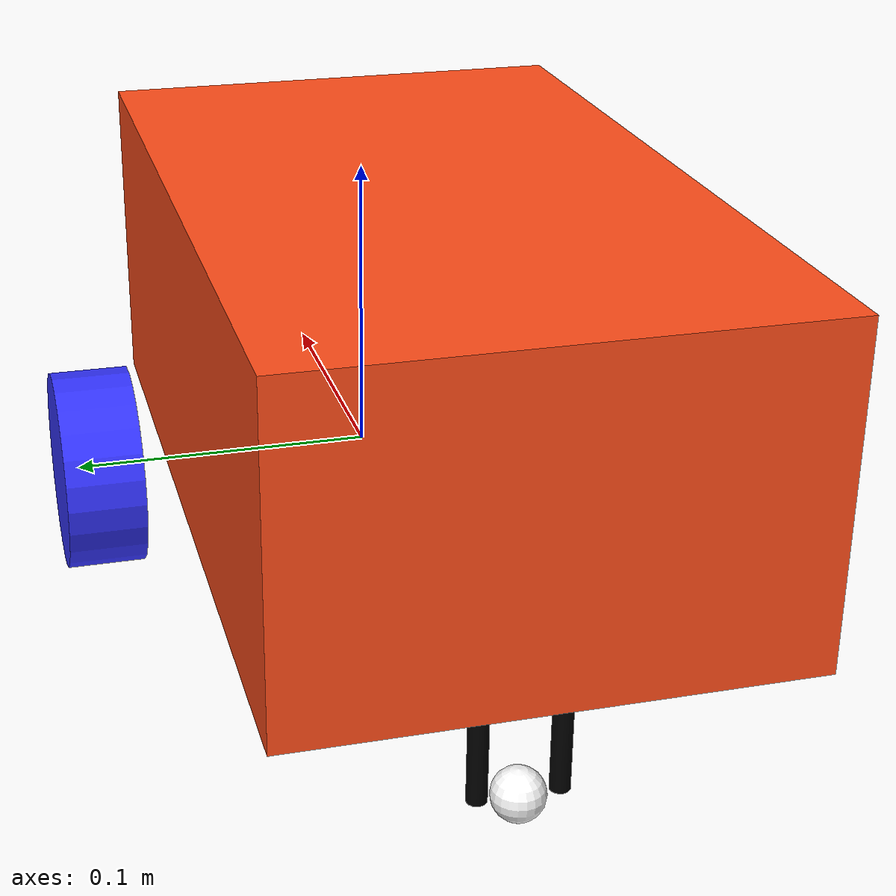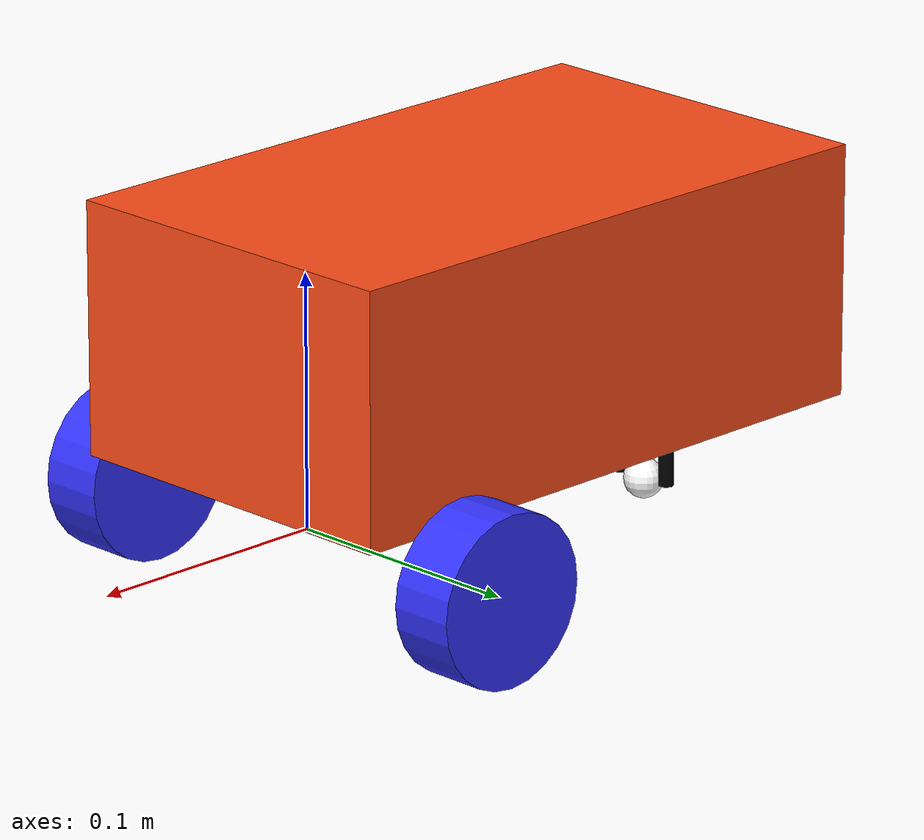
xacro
<?xml version="1.0"?>
<robot xmlns:xacro="http://www.ros.org/wiki/xacro" >

    <xacro:include filename="inertial_macros.xacro"/>

    <xacro:property name="chassis_length" value="0.25"/>
    <xacro:property name="chassis_width" value="0.15"/>
    <xacro:property name="chassis_height" value="0.1"/>
    <xacro:property name="chassis_mass" value="1.85"/>
    <xacro:property name="wheel_radius" value="0.0335"/>
    <xacro:property name="wheel_thickness" value="0.026"/>
    <xacro:property name="wheel_mass" value="0.05"/>
    <xacro:property name="wheel_offset_x" value="0.21"/>
    <xacro:property name="wheel_offset_y" value="0.094"/>
    <xacro:property name="wheel_offset_z" value="0.02"/>
    <xacro:property name="caster_wheel_radius" value="0.008"/>
    <xacro:property name="caster_wheel_mass" value="0.01"/>
    <xacro:property name="caster_wheel_offset_x" value="0.03"/>
    <xacro:property name="caster_wheel_offset_z" value="${-wheel_offset_z - wheel_radius + caster_wheel_radius}"/>

    <material name="white">
        <color rgba="1 1 1 1" />
    </material>

    <material name="orange">
        <color rgba="1 0.3 0.1 1"/>
    </material>

    <material name="blue">
        <color rgba="0.2 0.2 1 1"/>
    </material>

    <material name="black">
        <color rgba="0 0 0 1"/>
    </material>

    <material name="red">
        <color rgba="1 0 0 1"/>
    </material>

    <!-- BASE LINK -->

    <link name="base_link">

    </link>

    <!-- BASE_FOOTPRINT LINK -->

    <joint name="base_footprint_joint" type="fixed">
        <parent link="base_link"/>
        <child link="base_footprint"/>
        <origin xyz="0 0 0" rpy="0 0 0"/>
    </joint>

    <link name="base_footprint">
    </link>

    <!-- CHASSIS LINK -->

    <joint name="chassis_joint" type="fixed">
        <parent link="base_link"/>
        <child link="chassis"/>
        <origin xyz="${-wheel_offset_x} 0 ${wheel_offset_z}"/>
    </joint>

    <link name="chassis">
        <visual>
            <origin xyz="${chassis_length/2} 0 ${chassis_height/2}"/>
            <geometry>
                <box size="${chassis_length} ${chassis_width} ${chassis_height}"/>
            </geometry>
            <material name="orange"/>
        </visual>
        <collision>
            <origin xyz="${chassis_length/2} 0 ${chassis_height/2}"/>
            <geometry>
                <box size="${chassis_length} ${chassis_width} ${chassis_height}"/>
            </geometry>
        </collision>
        <xacro:inertial_box mass="${chassis_mass}" x="${chassis_length}" y="${chassis_width}" z="${chassis_height}">
            <origin xyz="${chassis_length/2} 0 ${chassis_height/2}" rpy="0 0 0"/>
        </xacro:inertial_box>
    </link>

    <gazebo reference="chassis">
        <material>Gazebo/Orange</material>
    </gazebo>

    <!-- LEFT WHEEL LINK -->

    <joint name="left_wheel_joint" type="continuous">
        <parent link="base_link"/>
        <child link="left_wheel"/>
        <origin xyz="0 ${wheel_offset_y} 0" rpy="0 0 0" />
        <axis xyz="0 1 0"/>
    </joint>

    <link name="left_wheel">
        <visual>
            <origin xyz="0 0 0" rpy="${pi/2} 0 0"/>
            <geometry>
                <cylinder radius="${wheel_radius}" length="${wheel_thickness}"/>
            </geometry>
            <material name="blue"/>
        </visual>
        <collision>
            <origin xyz="0 0 0" rpy="${pi/2} 0 0"/>
            <geometry>
                <cylinder radius="${wheel_radius}" length="${wheel_thickness}"/>
            </geometry>
        </collision>
        <xacro:inertial_cylinder mass="${wheel_mass}" length="${wheel_thickness}" radius="${wheel_radius}">
            <origin xyz="0 0 0" rpy="0 0 0"/>
        </xacro:inertial_cylinder>
    </link>

    <gazebo reference="left_wheel">
        <material>Gazebo/Blue</material>
    </gazebo>

    <!-- RIGHT WHEEL LINK -->

    <joint name="right_wheel_joint" type="continuous">
        <parent link="base_link"/>
        <child link="right_wheel"/>
        <origin xyz="0 ${-wheel_offset_y} 0" rpy="0 0 0" />
        <axis xyz="0 1 0"/>
    </joint>

    <link name="right_wheel">
        <visual>
            <origin xyz="0 0 0" rpy="${pi/2} 0 0"/>
            <geometry>
                <cylinder radius="${wheel_radius}" length="${wheel_thickness}"/>
            </geometry>
            <material name="blue"/>
        </visual>
        <collision>
            <origin xyz="0 0 0" rpy="${pi/2} 0 0"/>
            <geometry>
                <cylinder radius="${wheel_radius}" length="${wheel_thickness}"/>
            </geometry>
        </collision>
        <xacro:inertial_cylinder mass="${wheel_mass}" length="${wheel_thickness}" radius="${wheel_radius}">
            <origin xyz="0 0 0" rpy="0 0 0"/>
        </xacro:inertial_cylinder>
    </link>

    <gazebo reference="right_wheel">
        <material>Gazebo/Blue</material>
    </gazebo>

    <!-- CASTER WHEEL LINK -->

    <joint name="caster_wheel_joint" type="fixed">
        <parent link="chassis"/>
        <child link="caster_wheel"/>
        <origin xyz="${caster_wheel_offset_x} 0 ${caster_wheel_offset_z}"/>
    </joint>

    <link name="caster_wheel">
        <visual>
            <geometry>
                <sphere radius="${caster_wheel_radius}"/>
            </geometry>
            <material name="white"/>
        </visual>
        <visual>
            <origin xyz="0 0.012 0.02275"/>
            <geometry>
                <cylinder radius="0.003" length="0.0455"/>
            </geometry>
            <material name="black"/>
        </visual>
                <visual>
            <origin xyz="0 -0.012 0.02275"/>
            <geometry>
                <cylinder radius="0.003" length="0.0455"/>
            </geometry>
            <material name="black"/>
        </visual>
        <collision>
            <geometry>
                <sphere radius="${caster_wheel_radius}"/>
            </geometry>
        </collision>
        <xacro:inertial_sphere mass="${caster_wheel_mass}" radius="${caster_wheel_radius}">
            <origin xyz="0 0 0" rpy="0 0 0"/>
        </xacro:inertial_sphere>
    </link>

    <gazebo reference="caster_wheel">
        <material>Gazebo/White</material>
        <mu1 value="0.001"/>
        <mu2 value="0.001"/>
    </gazebo>

</robot>
